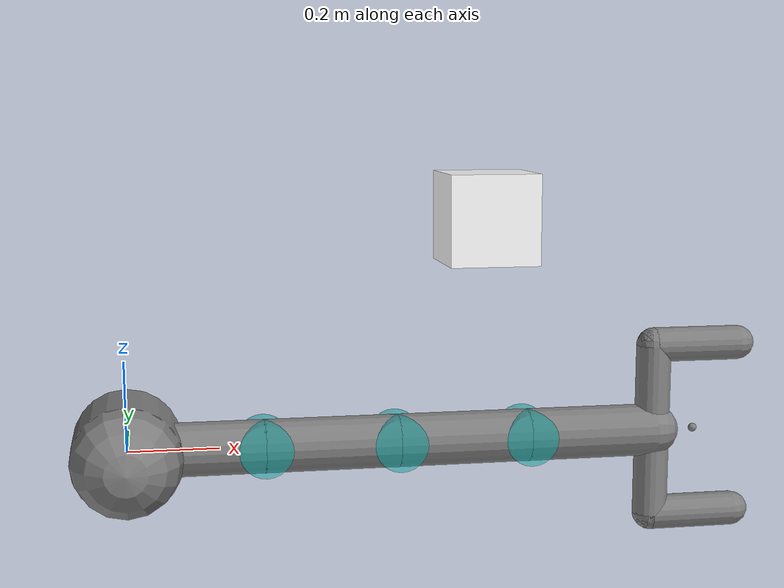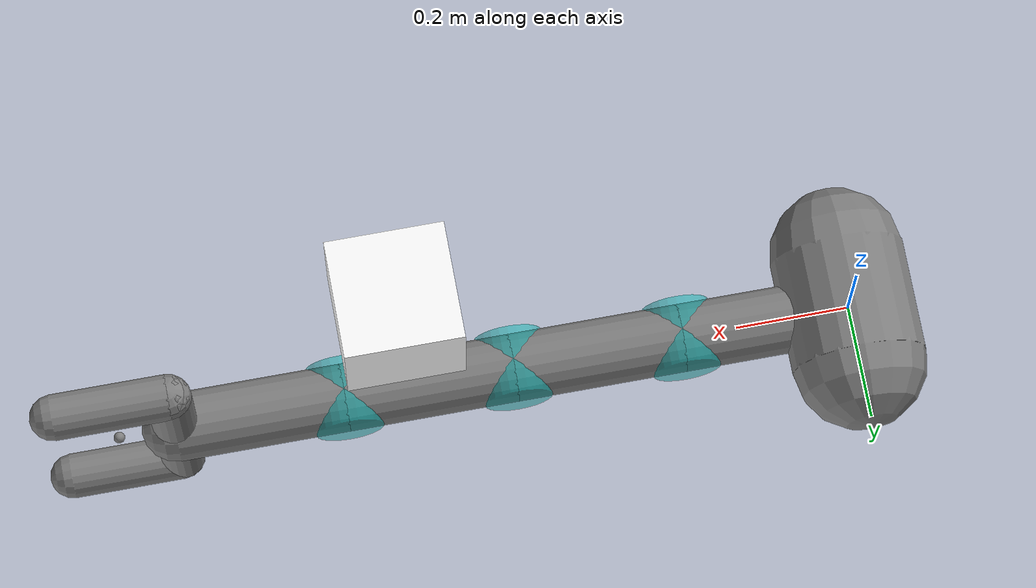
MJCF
<mujoco model="arm3d">
    <compiler inertiafromgeom="true" angle="radian" coordinate="local" />
    <option timestep="0.01" gravity="0 0 0" iterations="20" integrator="Euler" />

    <default>
        <joint armature='0.04' damping="1" limited="true"/>
        <geom friction=".8 .1 .1" density="300" margin="0.002" condim="1" contype="1" conaffinity="1"/>
    </default>

    <worldbody>
        <body name="palm" pos="0 0 0">
            <geom type="capsule" fromto="0 -0.1 0 0 0.1 0" size="0.12"/>

            <body name="proximal_1" pos="0 0 0">
                <joint name="proximal_j_1" type="hinge" pos="0 0 0" axis="0 1 0" range="-2.5236 2.3963" damping="1.0" />
                <geom type="capsule"  fromto="0 0 0 0.3 0 0" size="0.06" contype="1" conaffinity="1"/>

                        <geom name="DIP_wrap1"  type="cylinder" pos="0 0 0"
                        zaxis="0 1 0" size="0.06 0.06" rgba="0 .7 .7 .5"/>
                <body name="distal_1" pos="0.3 0 0">
                    <joint name="distal_j_1" type="hinge" pos="0 0 0" axis="0 1 0" range="-2.3213 2.3" damping="1.0"/>
                    <geom type="capsule"  fromto="0 0 0 0.3 0 0" size="0.06" contype="1" conaffinity="1"/>

                        <geom name="DIP_wrap2"  type="cylinder" pos="0 0 0"
                        zaxis="0 1 0" size="0.06 0.06" rgba="0 .7 .7 .5"/>
                    <body name="distal_2" pos="0.3 0 0">
                        <joint name="distal_j_2" type="hinge" pos="0 0 0" axis="0 1 0" range="-2.3213 2.3" damping="1.0"/>
                        <geom type="capsule" fromto="0 0 0 0.3 0 0" size="0.06" contype="1" conaffinity="1"/>

                        <geom name="DIP_wrap3"  type="cylinder" pos="0 0 0"
                        zaxis="0 1 0" size="0.06 0.06" rgba="0 .7 .7 .5"/>
                        <body name="distal_3" pos="0.3 0 0">
                            <joint name="distal_j_3" type="hinge" pos="0 0 0" axis="0 1 0" range="-2.3213 2.3" damping="1.0"/>
                            <geom type="capsule" fromto="0 0 0 0.3 0 0" size="0.06" contype="1" conaffinity="1"/>

                        <geom name="DIP_wrap4"  type="cylinder" pos="0 0 0"
                        zaxis="0 1 0" size="0.06 0.06" rgba="0 .7 .7 .5"/>
                            <body name="distal_4" pos="0.3 0 0">
                                <site name="tip arm" pos="0.1 0 0" size="0.01" />
                                <geom type="capsule" fromto="0 0 -0.2 0 0 0.2" size="0.04" contype="1" conaffinity="1" />
                                <geom type="capsule" fromto="0 0 -0.2 0.2 0 -0.2" size="0.04" contype="1" conaffinity="1" />
                                <geom type="capsule" fromto="0 0 0.2 0.2 0 0.2" size="0.04" contype="1" conaffinity="1" />
                            </body>
                        </body>
                    </body>
                </body>
            </body>
        </body>

        <body name="goal" pos="0.8 0.0 0.5">
            <geom rgba="1 1 1 1" type="box" size="0.1 0.1 0.1" density='0.00001' contype="0" conaffinity="0"/>
            <site name="goal pos" pos="0 0 0" size="0.01" />
        </body>
    </worldbody>

    <actuator>
        <motor joint="proximal_j_1" ctrlrange="-2 2" ctrllimited="true"/>
        <motor joint="distal_j_1" ctrlrange="-2 2" ctrllimited="true"/>
        <motor joint="distal_j_2" ctrlrange="-2 2" ctrllimited="true"/>
        <motor joint="distal_j_3" ctrlrange="-2 2" ctrllimited="true"/>
    </actuator>
</mujoco>
